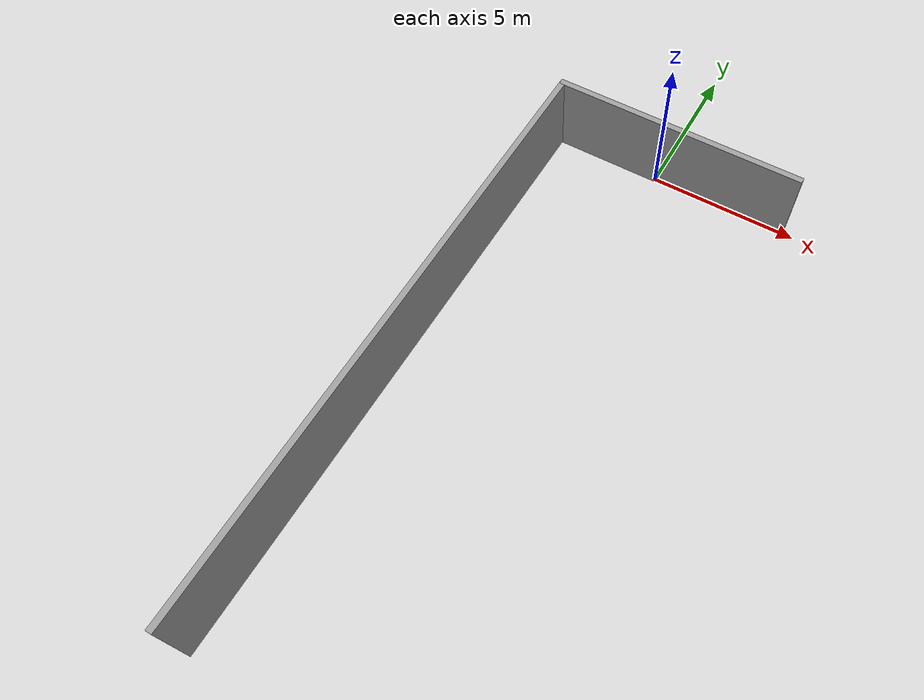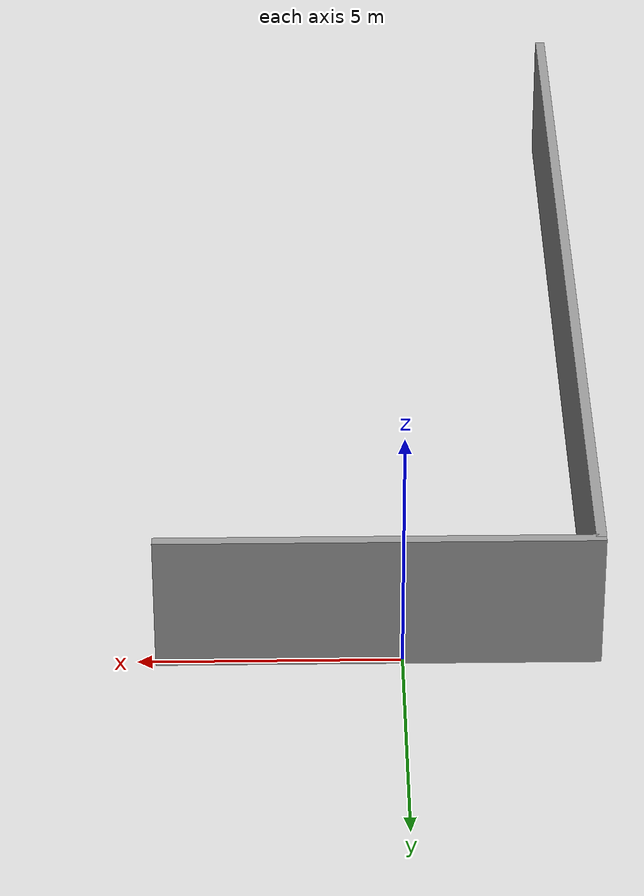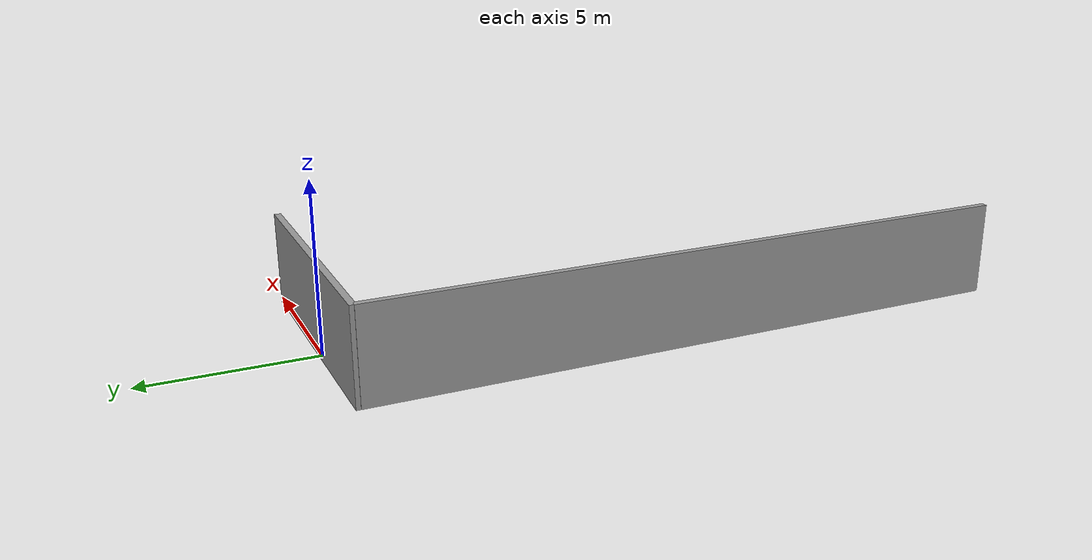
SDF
<?xml version='1.0'?>
<sdf version='1.6'>
  <model name='L-wall'>
    <link name='link'>
      <pose frame=''>0.459536 0.004219 1.4 0 -0 0</pose>
      <self_collide>0</self_collide>
      <enable_wind>0</enable_wind>
      <kinematic>0</kinematic>
      <inertial>
        <inertia>
          <ixx>nan</ixx>
          <ixy>0</ixy>
          <ixz>0</ixz>
          <iyy>nan</iyy>
          <iyz>0</iyz>
          <izz>nan</izz>
        </inertia>
        <mass>0</mass>
        <pose frame=''>0 0 0 0 -0 0</pose>
      </inertial>
      <visual name='visual'>
        <cast_shadows>0</cast_shadows>
        <geometry>
          <box>
            <size>8.40378 0.2 2.8</size>
          </box>
        </geometry>
        <material>
          <script>
            <uri>model://grey_wall/materials/scripts</uri>
            <uri>model://grey_wall/materials/textures</uri>
            <name>vrc/grey_wall</name>
          </script>
        </material>
        <pose frame=''>0 0 0 0 -0 0</pose>
        <transparency>0</transparency>
      </visual>
      <collision name='collision'>
        <laser_retro>0</laser_retro>
        <max_contacts>10</max_contacts>
        <pose frame=''>0 0 0 0 -0 0</pose>
        <geometry>
          <box>
            <size>8.40378 0.2 2.8</size>
          </box>
        </geometry>
        <surface>
          <friction>
            <ode>
              <mu>1</mu>
              <mu2>1</mu2>
              <fdir1>0 0 0</fdir1>
              <slip1>0</slip1>
              <slip2>0</slip2>
            </ode>
            <torsional>
              <coefficient>1</coefficient>
              <patch_radius>0</patch_radius>
              <surface_radius>0</surface_radius>
              <use_patch_radius>1</use_patch_radius>
              <ode>
                <slip>0</slip>
              </ode>
            </torsional>
          </friction>
          <bounce>
            <restitution_coefficient>0</restitution_coefficient>
            <threshold>1e+06</threshold>
          </bounce>
          <contact>
            <collide_without_contact>0</collide_without_contact>
            <collide_without_contact_bitmask>1</collide_without_contact_bitmask>
            <collide_bitmask>1</collide_bitmask>
            <ode>
              <soft_cfm>0</soft_cfm>
              <soft_erp>0.2</soft_erp>
              <kp>1e+13</kp>
              <kd>1</kd>
              <max_vel>0.01</max_vel>
              <min_depth>0</min_depth>
            </ode>
            <bullet>
              <split_impulse>1</split_impulse>
              <split_impulse_penetration_threshold>-0.01</split_impulse_penetration_threshold>
              <soft_cfm>0</soft_cfm>
              <soft_erp>0.2</soft_erp>
              <kp>1e+13</kp>
              <kd>1</kd>
            </bullet>
          </contact>
        </surface>
      </collision>
    </link>
    <link name='link_clone'>
      <pose frame=''>-3.68857 -9.95622 1.4 0 0 -1.5747</pose>
      <self_collide>0</self_collide>
      <enable_wind>0</enable_wind>
      <kinematic>0</kinematic>
      <inertial>
        <inertia>
          <ixx>nan</ixx>
          <ixy>0</ixy>
          <ixz>0</ixz>
          <iyy>nan</iyy>
          <iyz>0</iyz>
          <izz>nan</izz>
        </inertia>
        <mass>0</mass>
        <pose frame=''>0 0 0 0 -0 0</pose>
      </inertial>
      <visual name='visual'>
        <cast_shadows>0</cast_shadows>
        <geometry>
          <box>
            <size>19.8548 0.2 2.8</size>
          </box>
        </geometry>
        <material>
          <script>
            <uri>model://grey_wall/materials/scripts</uri>
            <uri>model://grey_wall/materials/textures</uri>
            <name>vrc/grey_wall</name>
          </script>
          <shader type='pixel'/>
        </material>
        <pose frame=''>0 0 0 0 -0 0</pose>
        <transparency>0</transparency>
      </visual>
      <collision name='collision'>
        <laser_retro>0</laser_retro>
        <max_contacts>10</max_contacts>
        <pose frame=''>0 0 0 0 -0 0</pose>
        <geometry>
          <box>
            <size>19.8548 0.2 2.8</size>
          </box>
        </geometry>
        <surface>
          <friction>
            <ode>
              <mu>1</mu>
              <mu2>1</mu2>
              <fdir1>0 0 0</fdir1>
              <slip1>0</slip1>
              <slip2>0</slip2>
            </ode>
            <torsional>
              <coefficient>1</coefficient>
              <patch_radius>0</patch_radius>
              <surface_radius>0</surface_radius>
              <use_patch_radius>1</use_patch_radius>
              <ode>
                <slip>0</slip>
              </ode>
            </torsional>
          </friction>
          <bounce>
            <restitution_coefficient>0</restitution_coefficient>
            <threshold>1e+06</threshold>
          </bounce>
          <contact>
            <collide_without_contact>0</collide_without_contact>
            <collide_without_contact_bitmask>1</collide_without_contact_bitmask>
            <collide_bitmask>1</collide_bitmask>
            <ode>
              <soft_cfm>0</soft_cfm>
              <soft_erp>0.2</soft_erp>
              <kp>1e+13</kp>
              <kd>1</kd>
              <max_vel>0.01</max_vel>
              <min_depth>0</min_depth>
            </ode>
            <bullet>
              <split_impulse>1</split_impulse>
              <split_impulse_penetration_threshold>-0.01</split_impulse_penetration_threshold>
              <soft_cfm>0</soft_cfm>
              <soft_erp>0.2</soft_erp>
              <kp>1e+13</kp>
              <kd>1</kd>
            </bullet>
          </contact>
        </surface>
      </collision>
    </link>
    <static>1</static>
    <allow_auto_disable>1</allow_auto_disable>
  </model>
</sdf>
